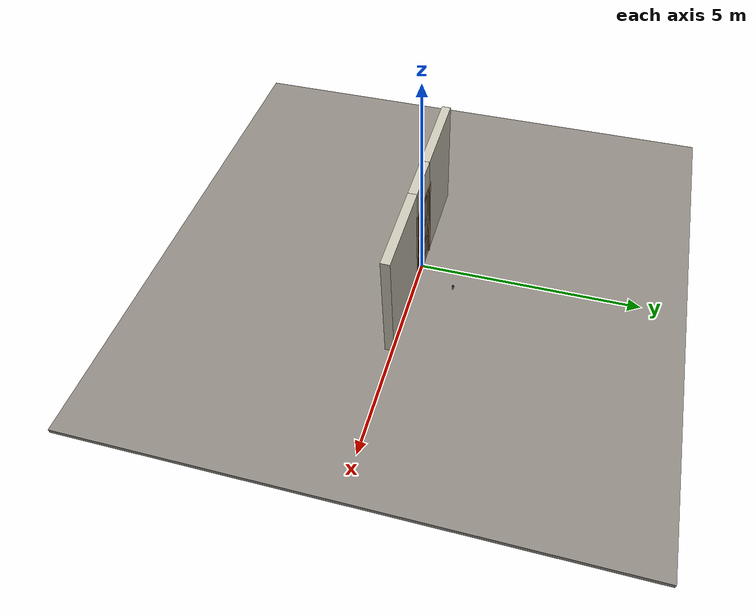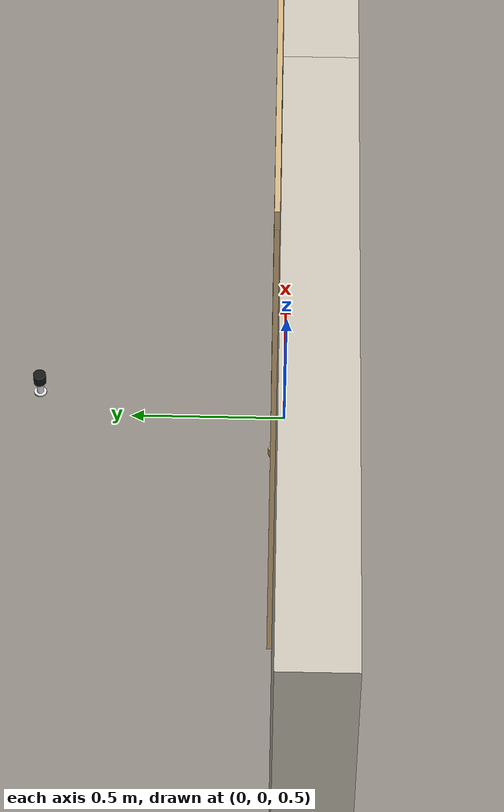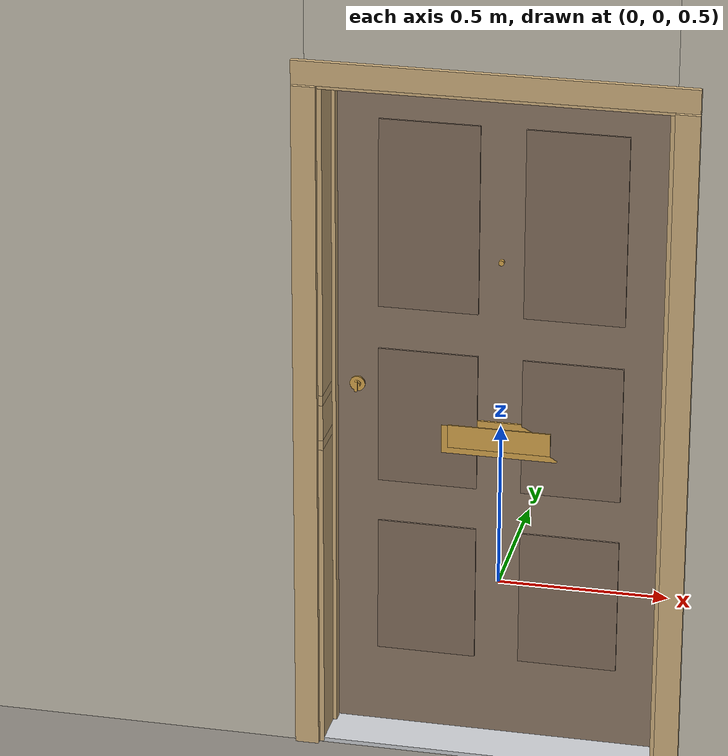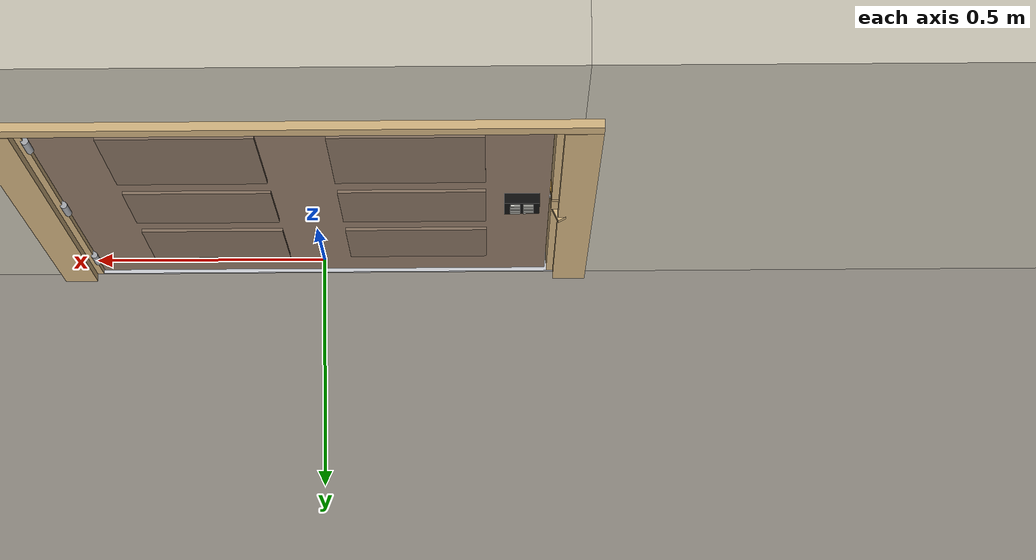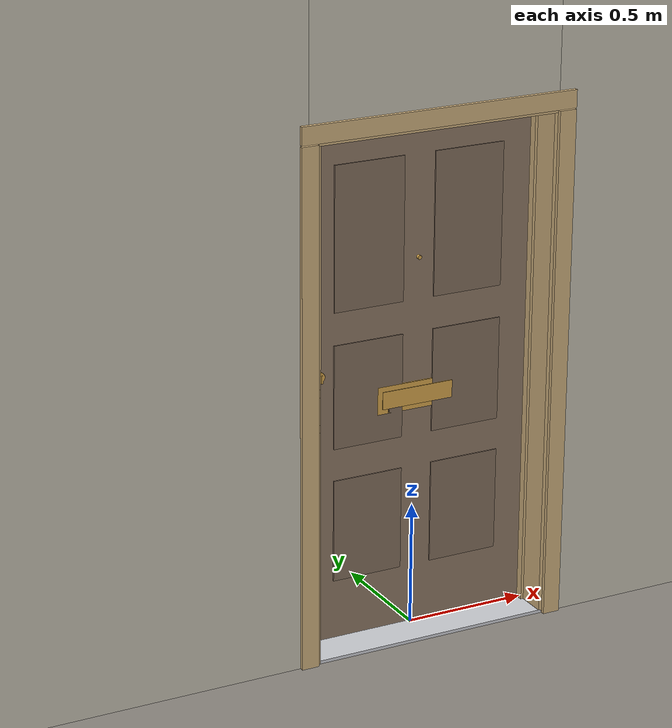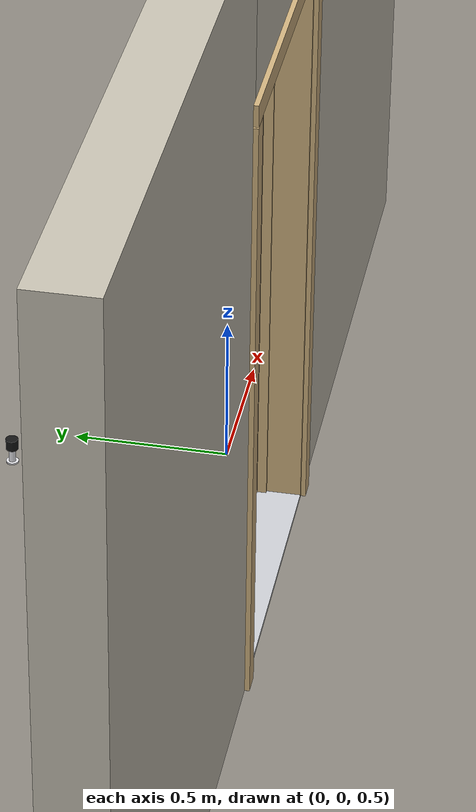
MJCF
<?xml version="1.0" ?>
<mujoco model="db0263_swing_single_full">
  <compiler angle="radian" meshdir="../../hardware" texturedir="../../textures" autolimits="true" inertiafromgeom="false"/>
  <option timestep="0.002" integrator="implicitfast" cone="elliptic" impratio="10" noslip_iterations="3">
    <flag multiccd="enable"/>
  </option>
  <size memory="16M"/>
  <default>
    <geom condim="4" solref="0.005 1" solimp="0.95 0.99 0.001"/>
    <joint solreflimit="0.005 1" solimplimit="0.95 0.99 0.001"/>
    <tendon solreflimit="0.005 1"/>
    <equality solref="0.002 1"/>
  </default>
  <visual>
    <headlight ambient="0.4 0.4 0.4" diffuse="0.7 0.7 0.7" specular="0.2 0.2 0.2"/>
    <quality shadowsize="4096"/>
    <map znear="0.01" zfar="60"/>
  </visual>
  <asset>
    <mesh name="hinge_e22b26c0c1" file="hinge_e22b26c0c1.obj"/>
    <mesh name="hinge_jamb_e1d088f8dc" file="hinge_jamb_e1d088f8dc.obj"/>
    <mesh name="keypad_body_3b2d063948" file="keypad_body_3b2d063948.obj"/>
    <mesh name="peephole_f829311a59" file="peephole_f829311a59.obj"/>
    <mesh name="thumbturn_eb5c9899a3" file="thumbturn_eb5c9899a3.obj"/>
    <material name="mat_floor" rgba="0.55 0.53 0.5 1" specular="0.2" shininess="0.15" reflectance="0"/>
    <material name="mat_wall" rgba="0.78 0.76 0.7 1" specular="0.2" shininess="0.1" reflectance="0"/>
    <material name="mat_leaf" rgba="0.56 0.475 0.4 1" specular="0.2" shininess="0.5" reflectance="0"/>
    <material name="mat_leaf_panel" rgba="0.515 0.437 0.368 1" specular="0.2" shininess="0.5" reflectance="0"/>
    <material name="mat_hinge" rgba="0.65 0.66 0.68 1" specular="0.74" shininess="0.5" reflectance="0.36"/>
    <material name="mat_op_nickel_satin" rgba="0.72 0.7 0.66 1" specular="0.8" shininess="0.65" reflectance="0.4"/>
    <material name="mat_trim" rgba="0.85 0.66 0.3 1" specular="0.8" shininess="0.75" reflectance="0.4"/>
    <material name="mat_keypad" rgba="0.05 0.05 0.05 1" specular="0.38" shininess="0.3" reflectance="0.12"/>
    <material name="mat_key" rgba="0.85 0.85 0.82 1" specular="0.2" shininess="0.5" reflectance="0"/>
    <material name="mat_bolt" rgba="0.75 0.76 0.77 1" specular="0.8" shininess="0.65" reflectance="0.4"/>
    <material name="mat_deadbolt" rgba="0.85 0.66 0.3 1" specular="0.8" shininess="0.75" reflectance="0.4"/>
    <material name="mat_frame" rgba="0.82 0.7 0.5 1" specular="0.2" shininess="0.45" reflectance="0"/>
    <material name="mat_threshold" rgba="0.8 0.81 0.83 1" specular="0.8" shininess="0.6" reflectance="0.4"/>
    <material name="mat_peephole" rgba="0.85 0.66 0.3 1" specular="0.8" shininess="0.75" reflectance="0.4"/>
    <material name="mat_mailslot" rgba="0.85 0.66 0.3 1" specular="0.8" shininess="0.75" reflectance="0.4"/>
    <material name="mat_bumper_stop" rgba="0.08 0.08 0.08 1" specular="0.2" shininess="0.1" reflectance="0"/>
    <material name="mat_stop_base" rgba="0.9 0.9 0.92 1" specular="0.8" shininess="0.9" reflectance="0.4"/>
    <texture name="skybox" type="skybox" builtin="gradient" rgb1="0.6 0.7 0.85" rgb2="0.9 0.92 0.95" width="256" height="256"/>
  </asset>
  <worldbody>
    <light name="sun" pos="1.5 -2.5 4" dir="-0.3 0.5 -0.8" directional="true" diffuse="0.8 0.8 0.8" specular="0.3 0.3 0.3" castshadow="true"/>
    <light name="fill" pos="-1.5 2.5 3" dir="0.3 -0.5 -0.7" directional="true" diffuse="0.35 0.35 0.4" castshadow="false"/>
    <camera name="robot_view" pos="0 -2.613187 1.734312" xyaxes="1 0 0 0 0.26963 0.962964" fovy="52"/>
    <camera name="far_view" pos="0 2.471187 1.734312" xyaxes="-1 0 0 0 -0.26963 0.962964" fovy="52"/>
    <camera name="iso" pos="-1.932062 -2.206438 2.141063" xyaxes="0.741536 -0.670913 0 0.242917 0.268487 0.932151" fovy="46"/>
    <camera name="detail_handle" pos="-0.199 -0.871 1.245" xyaxes="0.97561 0.219512 0 -0.070934 0.315262 0.94635" fovy="38"/>
    <geom name="floor" type="box" size="6 6 0.05" pos="0 0 -0.05" material="mat_floor" group="0" contype="1" conaffinity="1" friction="0.8 0.005 0.0001" density="2400"/>
    <geom name="wall_left" type="box" size="0.9825 0.1 1.35" pos="-1.5175 -0.071 1.35" material="mat_wall" group="0" contype="1" conaffinity="1" friction="0.6 0.005 0.0001" density="800"/>
    <geom name="wall_right" type="box" size="0.9975 0.1 1.35" pos="1.5025 -0.071 1.35" material="mat_wall" group="0" contype="1" conaffinity="1" friction="0.6 0.005 0.0001" density="800"/>
    <geom name="wall_header" type="box" size="0.52 0.1 0.303" pos="-0.015 -0.071 2.397" material="mat_wall" group="0" contype="1" conaffinity="1" friction="0.6 0.005 0.0001" density="800"/>
    <geom name="hinge_0_jamb" type="mesh" mesh="hinge_jamb_e1d088f8dc" pos="0.483 0.029 0.267" quat="0 0 0 1" material="mat_hinge" group="1" contype="0" conaffinity="0" density="7850"/>
    <geom name="hinge_1_jamb" type="mesh" mesh="hinge_jamb_e1d088f8dc" pos="0.483 0.029 1.029" quat="0 0 0 1" material="mat_hinge" group="1" contype="0" conaffinity="0" density="7850"/>
    <geom name="hinge_2_jamb" type="mesh" mesh="hinge_jamb_e1d088f8dc" pos="0.483 0.029 1.861" quat="0 0 0 1" material="mat_hinge" group="1" contype="0" conaffinity="0" density="7850"/>
    <geom name="leaf_deadbolt_strike_b" type="box" size="0.0155 0.003 0.0005" pos="-0.4855 0 1.0865" quat="0.5 0.5 0.5 0.5" material="mat_deadbolt" group="1" contype="0" conaffinity="0" density="7800"/>
    <geom name="leaf_deadbolt_strike_l" type="box" size="0.003 0.0155 0.0005" pos="-0.4855 -0.0125 1.105" quat="0.5 0.5 0.5 0.5" material="mat_deadbolt" group="1" contype="0" conaffinity="0" density="7800"/>
    <geom name="leaf_deadbolt_strike_t" type="box" size="0.0155 0.003 0.0005" pos="-0.4855 0 1.1235" quat="0.5 0.5 0.5 0.5" material="mat_deadbolt" group="1" contype="0" conaffinity="0" density="7800"/>
    <geom name="leaf_deadbolt_strike_r" type="box" size="0.003 0.0155 0.0005" pos="-0.4855 0.0125 1.105" quat="0.5 0.5 0.5 0.5" material="mat_deadbolt" group="1" contype="0" conaffinity="0" density="7800"/>
    <geom name="jamb_hinge" type="box" size="0.0095 0.1 1.0225" pos="0.4955 -0.071 1.0225" material="mat_frame" group="0" contype="1" conaffinity="1" friction="0.6 0.005 0.0001" density="400"/>
    <geom name="strike_965_wall_n" type="box" size="0.0245 0.08225 0.015" pos="-0.5105 -0.08875 0.965" material="mat_frame" group="0" contype="1" conaffinity="1" friction="0.6 0.005 0.0001" density="400"/>
    <geom name="strike_965_wall_p" type="box" size="0.0245 0.008 0.015" pos="-0.5105 0.0145 0.965" material="mat_frame" group="0" contype="1" conaffinity="1" friction="0.6 0.005 0.0001" density="400"/>
    <geom name="strike_965_ramp" type="box" size="0.0245 0.016771 0.015" pos="-0.515413 0.026543 0.965" quat="0.973249 0 0 0.229753" material="mat_frame" group="0" contype="1" conaffinity="1" friction="0.12 0.005 0.0001" density="400"/>
    <geom name="strike_965_back" type="box" size="0.0155 0.0065 0.015" pos="-0.5195 0 0.965" material="mat_frame" group="0" contype="1" conaffinity="1" friction="0.6 0.005 0.0001" density="400"/>
    <geom name="strike_1105_wall_n" type="box" size="0.0245 0.08075 0.0155" pos="-0.5105 -0.09025 1.105" material="mat_frame" group="0" contype="1" conaffinity="1" friction="0.6 0.005 0.0001" density="400"/>
    <geom name="strike_1105_wall_p" type="box" size="0.0245 0.00975 0.0155" pos="-0.5105 0.01925 1.105" material="mat_frame" group="0" contype="1" conaffinity="1" friction="0.6 0.005 0.0001" density="400"/>
    <geom name="strike_1105_back" type="box" size="0.0098 0.0095 0.0155" pos="-0.5252 0 1.105" material="mat_frame" group="0" contype="1" conaffinity="1" friction="0.6 0.005 0.0001" density="400"/>
    <geom name="jamb_strike_0" type="box" size="0.0245 0.1 0.475" pos="-0.5105 -0.071 0.475" material="mat_frame" group="0" contype="1" conaffinity="1" friction="0.6 0.005 0.0001" density="400"/>
    <geom name="jamb_strike_1" type="box" size="0.0245 0.1 0.05475" pos="-0.5105 -0.071 1.03475" material="mat_frame" group="0" contype="1" conaffinity="1" friction="0.6 0.005 0.0001" density="400"/>
    <geom name="jamb_strike_2" type="box" size="0.0245 0.1 0.46225" pos="-0.5105 -0.071 1.58275" material="mat_frame" group="0" contype="1" conaffinity="1" friction="0.6 0.005 0.0001" density="400"/>
    <geom name="jamb_head" type="box" size="0.52 0.1 0.0095" pos="-0.015 -0.071 2.0545" material="mat_frame" group="0" contype="1" conaffinity="1" friction="0.6 0.005 0.0001" density="400"/>
    <geom name="head_stud" type="box" size="0.52 0.1 0.015" pos="-0.015 -0.071 2.079" material="mat_wall" group="0" contype="1" conaffinity="1" friction="0.6 0.005 0.0001" density="500"/>
    <geom name="stop_hinge" type="box" size="0.0055 0.016 1.0225" pos="0.4805 -0.0385 1.0225" material="mat_frame" group="0" contype="1" conaffinity="1" friction="0.6 0.005 0.0001" density="400"/>
    <geom name="stop_strike" type="box" size="0.0055 0.016 1.0225" pos="-0.4805 -0.0385 1.0225" material="mat_frame" group="0" contype="1" conaffinity="1" friction="0.6 0.005 0.0001" density="400"/>
    <geom name="stop_head" type="box" size="0.486 0.016 0.0055" pos="0 -0.0385 2.0395" material="mat_frame" group="0" contype="1" conaffinity="1" friction="0.6 0.005 0.0001" density="400"/>
    <geom name="casing_l_n" type="box" size="0.035 0.008 1.032" pos="-0.535 -0.179 1.0225" material="mat_frame" group="2" contype="0" conaffinity="0" density="400"/>
    <geom name="casing_r_n" type="box" size="0.035 0.008 1.032" pos="0.535 -0.179 1.0225" material="mat_frame" group="2" contype="0" conaffinity="0" density="400"/>
    <geom name="casing_h_n" type="box" size="0.57 0.008 0.035" pos="0 -0.179 2.094" material="mat_frame" group="2" contype="0" conaffinity="0" density="400"/>
    <geom name="casing_l_p" type="box" size="0.035 0.008 1.032" pos="-0.535 0.037 1.0225" material="mat_frame" group="2" contype="0" conaffinity="0" density="400"/>
    <geom name="casing_r_p" type="box" size="0.035 0.008 1.032" pos="0.535 0.037 1.0225" material="mat_frame" group="2" contype="0" conaffinity="0" density="400"/>
    <geom name="casing_h_p" type="box" size="0.57 0.008 0.035" pos="0 0.037 2.094" material="mat_frame" group="2" contype="0" conaffinity="0" density="400"/>
    <geom name="threshold" type="box" size="0.505 0.1 0.0065" pos="0 -0.071 0.0065" material="mat_threshold" group="0" contype="1" conaffinity="1" friction="0.5 0.005 0.0001" density="2700"/>
    <geom name="door_stop_base" type="cylinder" size="0.022 0.003" pos="0.499 0.84925 0.003" material="mat_stop_base" group="0" contype="1" conaffinity="1" friction="0.6 0.005 0.0001" density="7850"/>
    <geom name="door_stop_post" type="cylinder" size="0.012 0.0255" pos="0.499 0.84925 0.0315" material="mat_stop_base" group="0" contype="1" conaffinity="1" friction="0.6 0.005 0.0001" density="7850"/>
    <geom name="door_stop_bumper" type="cylinder" size="0.022 0.02" pos="0.499 0.84925 0.077" material="mat_bumper_stop" group="0" contype="1" conaffinity="1" friction="0.6 0.005 0.0001" density="1100"/>
    <site name="approach_point" pos="0 -1.5 0" quat="1 0 0 0" size="0.05" rgba="0.2 0.9 0.2 0.5" group="4"/>
    <site name="goal_point" pos="0 1.5 0" quat="1 0 0 0" size="0.05" rgba="0.2 0.9 0.2 0.5" group="4"/>
    <site name="door_plane_center" pos="0 0 1.0225" quat="1 0 0 0" size="0.02" rgba="0.2 0.9 0.2 0.5" group="4"/>
    <body name="leaf" pos="0.486 0 0">
      <inertial pos="-0.483022 -0.000344 1.027944" mass="63.469281" quat="-0.499954 0.499986 0.500102 0.499957" diaginertia="4.966094561 20.945462243 25.887957677"/>
      <joint name="leaf_hinge" type="hinge" axis="0 0 -1" pos="-0.003 0.029 0" limited="true" range="0 1.570796" damping="0.368237" frictionloss="6.758312" armature="0.02"/>
      <geom name="leaf_slab" type="box" size="0.4825 0.022 1.012" pos="-0.4855 0 1.029" material="mat_leaf" group="0" contype="1" conaffinity="1" friction="0.4 0.005 0.0001" density="1"/>
      <geom name="leaf_panel_0_n" type="box" size="0.145675 0.003 0.208024" pos="-0.274825 -0.025 0.467664" material="mat_leaf_panel" group="1" contype="0" conaffinity="0" density="1"/>
      <geom name="leaf_panel_0_p" type="box" size="0.145675 0.003 0.208024" pos="-0.274825 0.025 0.467664" material="mat_leaf_panel" group="1" contype="0" conaffinity="0" density="1"/>
      <geom name="leaf_panel_1_n" type="box" size="0.145675 0.003 0.208024" pos="-0.696175 -0.025 0.467664" material="mat_leaf_panel" group="1" contype="0" conaffinity="0" density="1"/>
      <geom name="leaf_panel_1_p" type="box" size="0.145675 0.003 0.208024" pos="-0.696175 0.025 0.467664" material="mat_leaf_panel" group="1" contype="0" conaffinity="0" density="1"/>
      <geom name="leaf_panel_2_n" type="box" size="0.145675 0.003 0.208024" pos="-0.274825 -0.025 1.013712" material="mat_leaf_panel" group="1" contype="0" conaffinity="0" density="1"/>
      <geom name="leaf_panel_2_p" type="box" size="0.145675 0.003 0.208024" pos="-0.274825 0.025 1.013712" material="mat_leaf_panel" group="1" contype="0" conaffinity="0" density="1"/>
      <geom name="leaf_panel_3_n" type="box" size="0.145675 0.003 0.208024" pos="-0.696175 -0.025 1.013712" material="mat_leaf_panel" group="1" contype="0" conaffinity="0" density="1"/>
      <geom name="leaf_panel_3_p" type="box" size="0.145675 0.003 0.208024" pos="-0.696175 0.025 1.013712" material="mat_leaf_panel" group="1" contype="0" conaffinity="0" density="1"/>
      <geom name="leaf_panel_4_n" type="box" size="0.145675 0.003 0.284032" pos="-0.274825 -0.025 1.635768" material="mat_leaf_panel" group="1" contype="0" conaffinity="0" density="1"/>
      <geom name="leaf_panel_4_p" type="box" size="0.145675 0.003 0.284032" pos="-0.274825 0.025 1.635768" material="mat_leaf_panel" group="1" contype="0" conaffinity="0" density="1"/>
      <geom name="leaf_panel_5_n" type="box" size="0.145675 0.003 0.284032" pos="-0.696175 -0.025 1.635768" material="mat_leaf_panel" group="1" contype="0" conaffinity="0" density="1"/>
      <geom name="leaf_panel_5_p" type="box" size="0.145675 0.003 0.284032" pos="-0.696175 0.025 1.635768" material="mat_leaf_panel" group="1" contype="0" conaffinity="0" density="1"/>
      <geom name="hinge_0" type="mesh" mesh="hinge_e22b26c0c1" pos="-0.003 0.029 0.267" quat="0 0 0 1" material="mat_hinge" group="1" contype="0" conaffinity="0" density="7850"/>
      <geom name="hinge_1" type="mesh" mesh="hinge_e22b26c0c1" pos="-0.003 0.029 1.029" quat="0 0 0 1" material="mat_hinge" group="1" contype="0" conaffinity="0" density="7850"/>
      <geom name="hinge_2" type="mesh" mesh="hinge_e22b26c0c1" pos="-0.003 0.029 1.861" quat="0 0 0 1" material="mat_hinge" group="1" contype="0" conaffinity="0" density="7850"/>
      <geom name="leaf_keypad_body" type="mesh" mesh="keypad_body_3b2d063948" pos="-0.913 0.022 1.085" quat="0 0 0.707107 0.707107" material="mat_keypad" group="0" contype="1" conaffinity="1" friction="0.6 0.005 0.0001" density="2000"/>
      <geom name="leaf_latch_bolt_faceplate" type="box" size="0.0006 0.011 0.025" pos="-0.9674 0 0.965" material="mat_bolt" group="1" contype="0" conaffinity="0" density="8500"/>
      <geom name="leaf_deadbolt_faceplate" type="box" size="0.0006 0.014 0.0245" pos="-0.9674 0 1.105" material="mat_deadbolt" group="1" contype="0" conaffinity="0" density="8500"/>
      <geom name="peephole" type="mesh" mesh="peephole_f829311a59" pos="-0.4855 -0.022 1.517" quat="0 0 -0.707107 0.707107" material="mat_peephole" group="2" contype="0" conaffinity="0" density="8500"/>
      <geom name="mail_slot_frame" type="box" size="0.17 0.003 0.055" pos="-0.4855 -0.025 0.967" material="mat_mailslot" group="2" contype="0" conaffinity="0" density="8500"/>
      <site name="leaf_edge_mid" pos="-0.968 0 1.012" quat="1 0 0 0" size="0.02" rgba="0.2 0.9 0.2 0.5" group="4"/>
      <body name="leaf_handle" pos="-0.913 0 0.965">
        <inertial pos="0 0 0" mass="0.037288" quat="0.5 0.5 0.5 0.5" diaginertia="0.000000671 0.000005817 0.000005817"/>
        <joint name="leaf_handle_hinge" type="hinge" axis="0 1 0" limited="true" range="0 0.87" damping="0.141426" frictionloss="0.048" stiffness="0.5" springref="-0.5" armature="0.01"/>
        <geom name="leaf_handle_spindle" type="cylinder" size="0.006 0.021" pos="0 0 0" quat="0.707107 -0.707107 0 0" material="mat_op_nickel_satin" group="1" contype="0" conaffinity="0" density="7850"/>
      </body>
      <body name="leaf_keypad_key_1" pos="-0.9 0.042 1.133">
        <inertial pos="0 0.0015 0" mass="0.001008" quat="0 0 0.707107 0.707107" diaginertia="0.000000017 0.000000034 0.00000005"/>
        <joint name="leaf_keypad_key_1_slide" type="slide" axis="0 -1 0" limited="true" range="0 0.0015" damping="14" frictionloss="0.05" stiffness="1000" springref="-0.0015" armature="0.1"/>
        <geom name="leaf_keypad_key_1_geom" type="box" size="0.01 0.0015 0.007" pos="0 0.0015 0" material="mat_key" group="0" contype="1" conaffinity="1" friction="0.6 0.005 0.0001" density="1200"/>
        <site name="leaf_keypad_key_1_press" pos="0 0.005 0" quat="1 0 0 0" size="0.008" rgba="0.2 0.9 0.2 0.5" group="4"/>
      </body>
      <body name="leaf_keypad_key_2" pos="-0.926 0.042 1.133">
        <inertial pos="0 0.0015 0" mass="0.001008" quat="0 0 0.707107 0.707107" diaginertia="0.000000017 0.000000034 0.00000005"/>
        <joint name="leaf_keypad_key_2_slide" type="slide" axis="0 -1 0" limited="true" range="0 0.0015" damping="14" frictionloss="0.05" stiffness="1000" springref="-0.0015" armature="0.1"/>
        <geom name="leaf_keypad_key_2_geom" type="box" size="0.01 0.0015 0.007" pos="0 0.0015 0" material="mat_key" group="0" contype="1" conaffinity="1" friction="0.6 0.005 0.0001" density="1200"/>
        <site name="leaf_keypad_key_2_press" pos="0 0.005 0" quat="1 0 0 0" size="0.008" rgba="0.2 0.9 0.2 0.5" group="4"/>
      </body>
      <body name="leaf_keypad_key_3" pos="-0.9 0.042 1.109">
        <inertial pos="0 0.0015 0" mass="0.001008" quat="0 0 0.707107 0.707107" diaginertia="0.000000017 0.000000034 0.00000005"/>
        <joint name="leaf_keypad_key_3_slide" type="slide" axis="0 -1 0" limited="true" range="0 0.0015" damping="14" frictionloss="0.05" stiffness="1000" springref="-0.0015" armature="0.1"/>
        <geom name="leaf_keypad_key_3_geom" type="box" size="0.01 0.0015 0.007" pos="0 0.0015 0" material="mat_key" group="0" contype="1" conaffinity="1" friction="0.6 0.005 0.0001" density="1200"/>
        <site name="leaf_keypad_key_3_press" pos="0 0.005 0" quat="1 0 0 0" size="0.008" rgba="0.2 0.9 0.2 0.5" group="4"/>
      </body>
      <body name="leaf_keypad_key_4" pos="-0.926 0.042 1.109">
        <inertial pos="0 0.0015 0" mass="0.001008" quat="0 0 0.707107 0.707107" diaginertia="0.000000017 0.000000034 0.00000005"/>
        <joint name="leaf_keypad_key_4_slide" type="slide" axis="0 -1 0" limited="true" range="0 0.0015" damping="14" frictionloss="0.05" stiffness="1000" springref="-0.0015" armature="0.1"/>
        <geom name="leaf_keypad_key_4_geom" type="box" size="0.01 0.0015 0.007" pos="0 0.0015 0" material="mat_key" group="0" contype="1" conaffinity="1" friction="0.6 0.005 0.0001" density="1200"/>
        <site name="leaf_keypad_key_4_press" pos="0 0.005 0" quat="1 0 0 0" size="0.008" rgba="0.2 0.9 0.2 0.5" group="4"/>
      </body>
      <body name="leaf_keypad_key_5" pos="-0.9 0.042 1.085">
        <inertial pos="0 0.0015 0" mass="0.001008" quat="0 0 0.707107 0.707107" diaginertia="0.000000017 0.000000034 0.00000005"/>
        <joint name="leaf_keypad_key_5_slide" type="slide" axis="0 -1 0" limited="true" range="0 0.0015" damping="14" frictionloss="0.05" stiffness="1000" springref="-0.0015" armature="0.1"/>
        <geom name="leaf_keypad_key_5_geom" type="box" size="0.01 0.0015 0.007" pos="0 0.0015 0" material="mat_key" group="0" contype="1" conaffinity="1" friction="0.6 0.005 0.0001" density="1200"/>
        <site name="leaf_keypad_key_5_press" pos="0 0.005 0" quat="1 0 0 0" size="0.008" rgba="0.2 0.9 0.2 0.5" group="4"/>
      </body>
      <body name="leaf_keypad_key_6" pos="-0.926 0.042 1.085">
        <inertial pos="0 0.0015 0" mass="0.001008" quat="0 0 0.707107 0.707107" diaginertia="0.000000017 0.000000034 0.00000005"/>
        <joint name="leaf_keypad_key_6_slide" type="slide" axis="0 -1 0" limited="true" range="0 0.0015" damping="14" frictionloss="0.05" stiffness="1000" springref="-0.0015" armature="0.1"/>
        <geom name="leaf_keypad_key_6_geom" type="box" size="0.01 0.0015 0.007" pos="0 0.0015 0" material="mat_key" group="0" contype="1" conaffinity="1" friction="0.6 0.005 0.0001" density="1200"/>
        <site name="leaf_keypad_key_6_press" pos="0 0.005 0" quat="1 0 0 0" size="0.008" rgba="0.2 0.9 0.2 0.5" group="4"/>
      </body>
      <body name="leaf_keypad_key_7" pos="-0.9 0.042 1.061">
        <inertial pos="0 0.0015 0" mass="0.001008" quat="0 0 0.707107 0.707107" diaginertia="0.000000017 0.000000034 0.00000005"/>
        <joint name="leaf_keypad_key_7_slide" type="slide" axis="0 -1 0" limited="true" range="0 0.0015" damping="14" frictionloss="0.05" stiffness="1000" springref="-0.0015" armature="0.1"/>
        <geom name="leaf_keypad_key_7_geom" type="box" size="0.01 0.0015 0.007" pos="0 0.0015 0" material="mat_key" group="0" contype="1" conaffinity="1" friction="0.6 0.005 0.0001" density="1200"/>
        <site name="leaf_keypad_key_7_press" pos="0 0.005 0" quat="1 0 0 0" size="0.008" rgba="0.2 0.9 0.2 0.5" group="4"/>
      </body>
      <body name="leaf_keypad_key_8" pos="-0.926 0.042 1.061">
        <inertial pos="0 0.0015 0" mass="0.001008" quat="0 0 0.707107 0.707107" diaginertia="0.000000017 0.000000034 0.00000005"/>
        <joint name="leaf_keypad_key_8_slide" type="slide" axis="0 -1 0" limited="true" range="0 0.0015" damping="14" frictionloss="0.05" stiffness="1000" springref="-0.0015" armature="0.1"/>
        <geom name="leaf_keypad_key_8_geom" type="box" size="0.01 0.0015 0.007" pos="0 0.0015 0" material="mat_key" group="0" contype="1" conaffinity="1" friction="0.6 0.005 0.0001" density="1200"/>
        <site name="leaf_keypad_key_8_press" pos="0 0.005 0" quat="1 0 0 0" size="0.008" rgba="0.2 0.9 0.2 0.5" group="4"/>
      </body>
      <body name="leaf_keypad_key_9" pos="-0.9 0.042 1.037">
        <inertial pos="0 0.0015 0" mass="0.001008" quat="0 0 0.707107 0.707107" diaginertia="0.000000017 0.000000034 0.00000005"/>
        <joint name="leaf_keypad_key_9_slide" type="slide" axis="0 -1 0" limited="true" range="0 0.0015" damping="14" frictionloss="0.05" stiffness="1000" springref="-0.0015" armature="0.1"/>
        <geom name="leaf_keypad_key_9_geom" type="box" size="0.01 0.0015 0.007" pos="0 0.0015 0" material="mat_key" group="0" contype="1" conaffinity="1" friction="0.6 0.005 0.0001" density="1200"/>
        <site name="leaf_keypad_key_9_press" pos="0 0.005 0" quat="1 0 0 0" size="0.008" rgba="0.2 0.9 0.2 0.5" group="4"/>
      </body>
      <body name="leaf_keypad_key_0" pos="-0.926 0.042 1.037">
        <inertial pos="0 0.0015 0" mass="0.001008" quat="0 0 0.707107 0.707107" diaginertia="0.000000017 0.000000034 0.00000005"/>
        <joint name="leaf_keypad_key_0_slide" type="slide" axis="0 -1 0" limited="true" range="0 0.0015" damping="14" frictionloss="0.05" stiffness="1000" springref="-0.0015" armature="0.1"/>
        <geom name="leaf_keypad_key_0_geom" type="box" size="0.01 0.0015 0.007" pos="0 0.0015 0" material="mat_key" group="0" contype="1" conaffinity="1" friction="0.6 0.005 0.0001" density="1200"/>
        <site name="leaf_keypad_key_0_press" pos="0 0.005 0" quat="1 0 0 0" size="0.008" rgba="0.2 0.9 0.2 0.5" group="4"/>
      </body>
      <body name="leaf_latch_bolt" pos="-0.968 0 0.965">
        <inertial pos="0.008 0 0" mass="0.027149" quat="0 0 -0.707107 0.707107" diaginertia="0.000000328 0.000003943 0.000003943"/>
        <joint name="leaf_latch_bolt_slide" type="slide" axis="1 0 0" limited="true" range="0 0.014" damping="2" frictionloss="0.3" stiffness="400" springref="-0.01" armature="0.1"/>
        <geom name="leaf_latch_bolt_capsule" type="capsule" size="0.005 0.017" pos="0.008 0 0" quat="0.707107 0 -0.707107 0" material="mat_bolt" group="0" contype="1" conaffinity="1" friction="0.2 0.005 0.0001" density="8500"/>
      </body>
      <body name="leaf_deadbolt" pos="-0.968 0 1.105">
        <inertial pos="0.0023 0 0" mass="0.18836" quat="0 0 0.707107 0.707107" diaginertia="0.000013829 0.000052194 0.000057986"/>
        <joint name="leaf_deadbolt_slide" type="slide" axis="1 0 0" limited="true" range="0 0.0254" damping="5" frictionloss="1.5" armature="0.1"/>
        <geom name="leaf_deadbolt_box" type="box" size="0.0277 0.008 0.0125" pos="0.0023 0 0" material="mat_deadbolt" group="0" contype="1" conaffinity="1" friction="0.3 0.005 0.0001" density="8500"/>
      </body>
      <body name="leaf_deadbolt_thumbturn" pos="-0.903 -0.022 1.105">
        <inertial pos="0 -0.012928 0" mass="0.178946" quat="0.5 0.5 0.5 0.5" diaginertia="0.000026045 0.000026215 0.000032438"/>
        <joint name="leaf_deadbolt_thumbturn_hinge" type="hinge" axis="0 1 0" limited="true" range="0 1.5708" damping="0.05" frictionloss="0.3" armature="0.005"/>
        <geom name="leaf_deadbolt_thumbturn_mesh" type="mesh" mesh="thumbturn_eb5c9899a3" pos="0 0 0" quat="0 0 -0.707107 0.707107" material="mat_deadbolt" group="0" contype="1" conaffinity="1" friction="0.6 0.005 0.0001" density="7100"/>
        <geom name="leaf_deadbolt_thumbturn_col" type="box" size="0.006 0.012 0.016" pos="0 -0.02 0" material="mat_deadbolt" group="3" contype="1" conaffinity="1" rgba="0.8 0.3 0.3 0.25" friction="0.6 0.005 0.0001" density="7100"/>
      </body>
      <body name="mail_slot_flap" pos="-0.4855 -0.0305 1.002">
        <inertial pos="0 0 -0.035" mass="0.714" quat="0 0 0.707107 0.707107" diaginertia="0.000292502 0.005355952 0.00564655"/>
        <joint name="mail_slot_hinge" type="hinge" axis="-1 0 0" limited="true" range="0 1.2" damping="0.01" stiffness="0.3" springref="-0.3" armature="0.002"/>
        <geom name="mail_slot_flap_geom" type="box" size="0.15 0.002 0.035" pos="0 0 -0.035" material="mat_mailslot" group="0" contype="1" conaffinity="1" friction="0.6 0.005 0.0001" density="8500"/>
      </body>
    </body>
  </worldbody>
  <tendon>
    <fixed name="leaf_latch_bolt_coupling" limited="true" range="0 10">
      <joint joint="leaf_latch_bolt_slide" coef="1"/>
      <joint joint="leaf_handle_hinge" coef="-0.017284"/>
    </fixed>
  </tendon>
  <equality>
    <joint name="leaf_deadbolt_couple" joint1="leaf_deadbolt_slide" joint2="leaf_deadbolt_thumbturn_hinge" polycoef="0 0.01617 0 0 0" active="true"/>
  </equality>
  <contact>
    <exclude body1="leaf_deadbolt" body2="leaf_deadbolt_thumbturn"/>
  </contact>
  <sensor>
    <jointpos name="leaf_hinge_pos" joint="leaf_hinge"/>
    <jointvel name="leaf_hinge_vel" joint="leaf_hinge"/>
    <jointpos name="leaf_handle_hinge_pos" joint="leaf_handle_hinge"/>
    <jointvel name="leaf_handle_hinge_vel" joint="leaf_handle_hinge"/>
    <jointpos name="leaf_keypad_key_1_slide_pos" joint="leaf_keypad_key_1_slide"/>
    <jointvel name="leaf_keypad_key_1_slide_vel" joint="leaf_keypad_key_1_slide"/>
    <jointpos name="leaf_keypad_key_2_slide_pos" joint="leaf_keypad_key_2_slide"/>
    <jointvel name="leaf_keypad_key_2_slide_vel" joint="leaf_keypad_key_2_slide"/>
    <jointpos name="leaf_keypad_key_3_slide_pos" joint="leaf_keypad_key_3_slide"/>
    <jointvel name="leaf_keypad_key_3_slide_vel" joint="leaf_keypad_key_3_slide"/>
    <jointpos name="leaf_keypad_key_4_slide_pos" joint="leaf_keypad_key_4_slide"/>
    <jointvel name="leaf_keypad_key_4_slide_vel" joint="leaf_keypad_key_4_slide"/>
    <jointpos name="leaf_keypad_key_5_slide_pos" joint="leaf_keypad_key_5_slide"/>
    <jointvel name="leaf_keypad_key_5_slide_vel" joint="leaf_keypad_key_5_slide"/>
    <jointpos name="leaf_keypad_key_6_slide_pos" joint="leaf_keypad_key_6_slide"/>
    <jointvel name="leaf_keypad_key_6_slide_vel" joint="leaf_keypad_key_6_slide"/>
    <jointpos name="leaf_keypad_key_7_slide_pos" joint="leaf_keypad_key_7_slide"/>
    <jointvel name="leaf_keypad_key_7_slide_vel" joint="leaf_keypad_key_7_slide"/>
    <jointpos name="leaf_keypad_key_8_slide_pos" joint="leaf_keypad_key_8_slide"/>
    <jointvel name="leaf_keypad_key_8_slide_vel" joint="leaf_keypad_key_8_slide"/>
    <jointpos name="leaf_keypad_key_9_slide_pos" joint="leaf_keypad_key_9_slide"/>
    <jointvel name="leaf_keypad_key_9_slide_vel" joint="leaf_keypad_key_9_slide"/>
    <jointpos name="leaf_keypad_key_0_slide_pos" joint="leaf_keypad_key_0_slide"/>
    <jointvel name="leaf_keypad_key_0_slide_vel" joint="leaf_keypad_key_0_slide"/>
    <jointpos name="leaf_latch_bolt_slide_pos" joint="leaf_latch_bolt_slide"/>
    <jointvel name="leaf_latch_bolt_slide_vel" joint="leaf_latch_bolt_slide"/>
    <jointpos name="leaf_deadbolt_slide_pos" joint="leaf_deadbolt_slide"/>
    <jointvel name="leaf_deadbolt_slide_vel" joint="leaf_deadbolt_slide"/>
    <jointpos name="leaf_deadbolt_thumbturn_hinge_pos" joint="leaf_deadbolt_thumbturn_hinge"/>
    <jointvel name="leaf_deadbolt_thumbturn_hinge_vel" joint="leaf_deadbolt_thumbturn_hinge"/>
  </sensor>
</mujoco>
